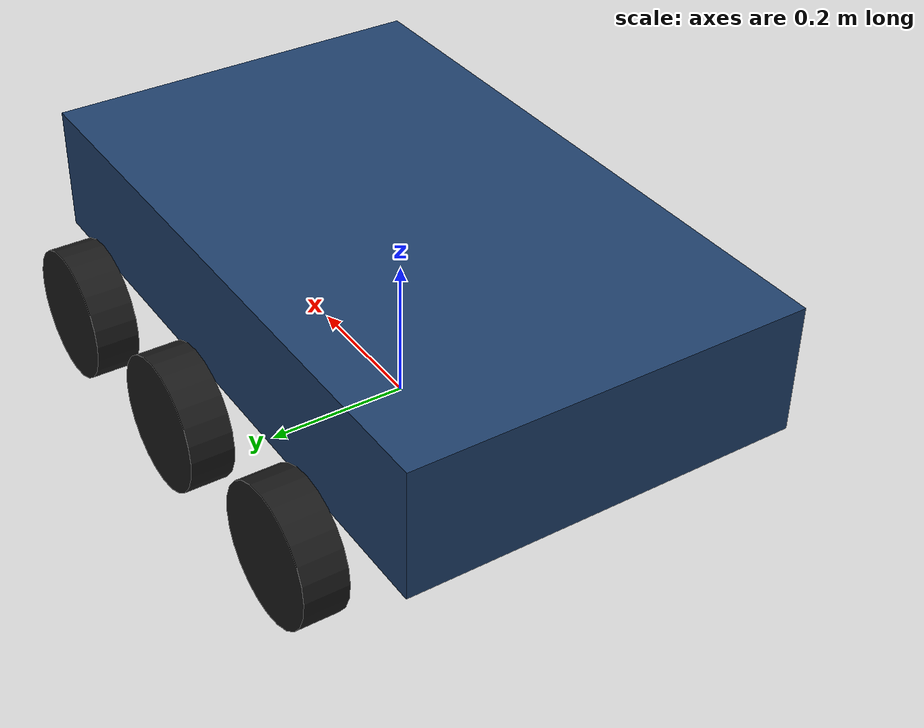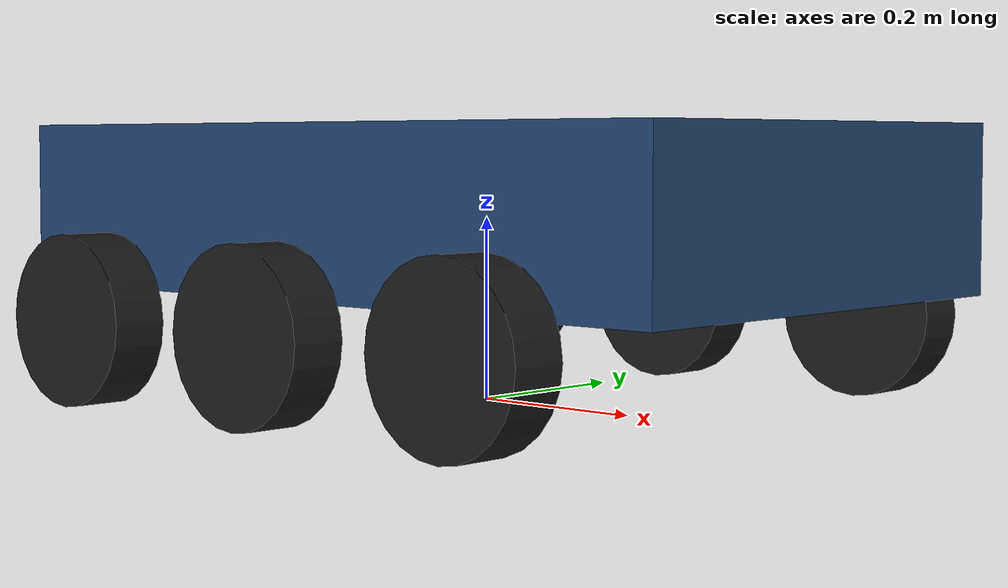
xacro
<?xml version="1.0"?>
<robot xmlns:xacro="http://www.ros.org/wiki/xacro" name="phidgets_6wheel">

  <xacro:property name="body_length" value="0.9"/>
  <xacro:property name="body_width" value="0.55"/>
  <xacro:property name="body_height" value="0.18"/>
  <xacro:property name="wheel_radius" value="0.0925"/>
  <xacro:property name="wheel_width" value="0.06"/>
  <xacro:property name="front_x" value="0.28"/>
  <xacro:property name="middle_x" value="0.0"/>
  <xacro:property name="rear_x" value="-0.28"/>
  <xacro:property name="left_y" value="0.33"/>
  <xacro:property name="right_y" value="-0.33"/>
  <xacro:property name="ground_clearance" value="0.03"/>
  <xacro:property name="body_visual_z" value="${wheel_radius + ground_clearance + body_height / 2.0}"/>
  <xacro:property name="wheel_z" value="${wheel_radius}"/>

  <material name="body_blue">
    <color rgba="0.12 0.25 0.42 1.0"/>
  </material>

  <material name="wheel_black">
    <color rgba="0.1 0.1 0.1 1.0"/>
  </material>

  <link name="base_link">
    <visual>
      <origin xyz="0 0 ${body_visual_z}" rpy="0 0 0"/>
      <geometry>
        <box size="${body_length} ${body_width} ${body_height}"/>
      </geometry>
      <material name="body_blue"/>
    </visual>
  </link>

  <!-- LEFT SIDE WHEELS -->
  <link name="front_left_wheel">
    <visual>
      <origin xyz="0 0 0" rpy="1.57079632679 0 0"/>
      <geometry>
        <cylinder radius="${wheel_radius}" length="${wheel_width}"/>
      </geometry>
      <material name="wheel_black"/>
    </visual>
  </link>

  <link name="middle_left_wheel">
    <visual>
      <origin xyz="0 0 0" rpy="1.57079632679 0 0"/>
      <geometry>
        <cylinder radius="${wheel_radius}" length="${wheel_width}"/>
      </geometry>
      <material name="wheel_black"/>
    </visual>
  </link>

  <link name="rear_left_wheel">
    <visual>
      <origin xyz="0 0 0" rpy="1.57079632679 0 0"/>
      <geometry>
        <cylinder radius="${wheel_radius}" length="${wheel_width}"/>
      </geometry>
      <material name="wheel_black"/>
    </visual>
  </link>

  <!-- RIGHT SIDE WHEELS -->
  <link name="front_right_wheel">
    <visual>
      <origin xyz="0 0 0" rpy="1.57079632679 0 0"/>
      <geometry>
        <cylinder radius="${wheel_radius}" length="${wheel_width}"/>
      </geometry>
      <material name="wheel_black"/>
    </visual>
  </link>

  <link name="middle_right_wheel">
    <visual>
      <origin xyz="0 0 0" rpy="1.57079632679 0 0"/>
      <geometry>
        <cylinder radius="${wheel_radius}" length="${wheel_width}"/>
      </geometry>
      <material name="wheel_black"/>
    </visual>
  </link>

  <link name="rear_right_wheel">
    <visual>
      <origin xyz="0 0 0" rpy="1.57079632679 0 0"/>
      <geometry>
        <cylinder radius="${wheel_radius}" length="${wheel_width}"/>
      </geometry>
      <material name="wheel_black"/>
    </visual>
  </link>

  <!-- LEFT SIDE JOINTS -->
  <joint name="front_left_wheel_joint" type="continuous">
    <parent link="base_link"/>
    <child link="front_left_wheel"/>
    <origin xyz="${front_x} ${left_y} ${wheel_z}" rpy="0 0 0"/>
    <axis xyz="0 1 0"/>
  </joint>

  <joint name="middle_left_wheel_joint" type="continuous">
    <parent link="base_link"/>
    <child link="middle_left_wheel"/>
    <origin xyz="${middle_x} ${left_y} ${wheel_z}" rpy="0 0 0"/>
    <axis xyz="0 1 0"/>
  </joint>

  <joint name="rear_left_wheel_joint" type="continuous">
    <parent link="base_link"/>
    <child link="rear_left_wheel"/>
    <origin xyz="${rear_x} ${left_y} ${wheel_z}" rpy="0 0 0"/>
    <axis xyz="0 1 0"/>
  </joint>

  <!-- RIGHT SIDE JOINTS -->
  <joint name="front_right_wheel_joint" type="continuous">
    <parent link="base_link"/>
    <child link="front_right_wheel"/>
    <origin xyz="${front_x} ${right_y} ${wheel_z}" rpy="0 0 0"/>
    <axis xyz="0 1 0"/>
  </joint>

  <joint name="middle_right_wheel_joint" type="continuous">
    <parent link="base_link"/>
    <child link="middle_right_wheel"/>
    <origin xyz="${middle_x} ${right_y} ${wheel_z}" rpy="0 0 0"/>
    <axis xyz="0 1 0"/>
  </joint>

  <joint name="rear_right_wheel_joint" type="continuous">
    <parent link="base_link"/>
    <child link="rear_right_wheel"/>
    <origin xyz="${rear_x} ${right_y} ${wheel_z}" rpy="0 0 0"/>
    <axis xyz="0 1 0"/>
  </joint>

  <ros2_control name="PhidgetsBLDC" type="system">
    <hardware>
      <plugin>phidgets_hardware/PhidgetsBldcHardware</plugin>
      <param name="gear_ratio">106.0</param>
      <param name="acceleration">5.0</param>
      <param name="stall_velocity">0.0</param>
      <param name="commutations_per_motor_rev">24</param>
      <param name="command_limit">1.0</param>
      <param name="attachment_retry_period_sec">1.0</param>
      <param name="corner_steering_scale">1.0</param>
      <param name="middle_steering_scale">0.55</param>
    </hardware>

    <!-- LEFT SIDE - ALL 3 WHEELS -->
    <joint name="front_left_wheel_joint">
      <command_interface name="velocity"/>
      <state_interface name="position"/>
      <state_interface name="velocity"/>
    </joint>

    <joint name="middle_left_wheel_joint">
      <command_interface name="velocity"/>
      <state_interface name="position"/>
      <state_interface name="velocity"/>
    </joint>

    <joint name="rear_left_wheel_joint">
      <command_interface name="velocity"/>
      <state_interface name="position"/>
      <state_interface name="velocity"/>
    </joint>

    <!-- RIGHT SIDE - ALL 3 WHEELS -->
    <joint name="front_right_wheel_joint">
      <command_interface name="velocity"/>
      <state_interface name="position"/>
      <state_interface name="velocity"/>
    </joint>

    <joint name="middle_right_wheel_joint">
      <command_interface name="velocity"/>
      <state_interface name="position"/>
      <state_interface name="velocity"/>
    </joint>

    <joint name="rear_right_wheel_joint">
      <command_interface name="velocity"/>
      <state_interface name="position"/>
      <state_interface name="velocity"/>
    </joint>

  </ros2_control>

</robot>
